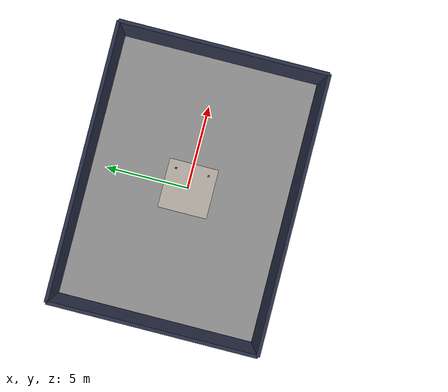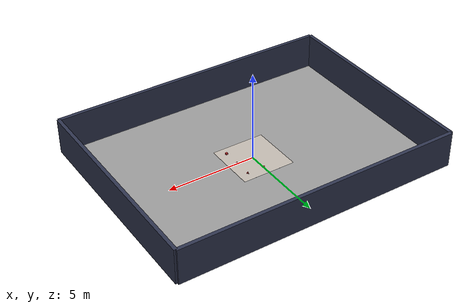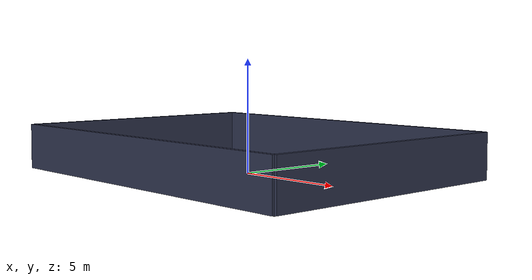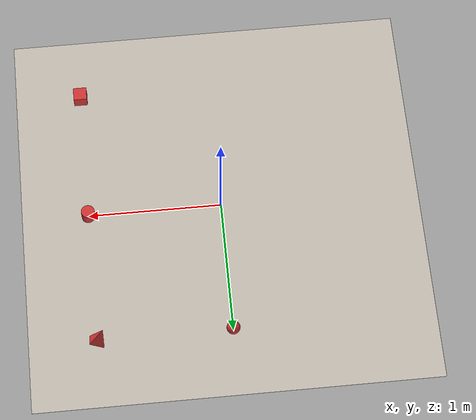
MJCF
<mujoco model="factory">
    <option timestep="0.001" gravity="0 0 -9.81"
            integrator="RK4" solver="PGS" />

    <visual>
        <headlight diffuse="0.6 0.6 0.6" ambient="0.3 0.3 0.3" />
        <rgba fog="0.10 0.12 0.14 1" />
        <global azimuth="120" elevation="-20" />
    </visual>

    <asset>
        <texture type="skybox" builtin="gradient"
                 rgb1="0.05 0.08 0.12" rgb2="0.25 0.27 0.30"
                 width="512" height="3072" />

        <material name="floor_mat" rgba="0.6 0.6 0.6 1" reflectance="0.3" />

        <texture name="kmu_logo_tex" type="2d" file="Signature_KMU.png" />
        <material name="logo_mat" texture="kmu_logo_tex" texuniform="true" />

        <material name="box_mat" rgba="0.8 0.2 0.2 1" reflectance="0.5" />

        <mesh name="tetra_mesh"
              vertex="0.05 0.05 0.05
                      -0.05 -0.05 0.05
                      -0.05 0.05 -0.05
                      0.05 -0.05 -0.05"/>
    </asset>

    <worldbody>
        <light pos="0 0 8" dir="0 0 -1" directional="true" />

        <geom name="floor_base" type="plane" size="8 6 0.05" pos="0 0 0" material="floor_mat" />

        <geom name="floor_logo"
              type="box"
              pos="0 0 0.001"
              size="1.5 1.5 0.0005"
              material="logo_mat" />

        <geom name="wall_front" type="box" pos="0 6 1" size="8 0.1 1" rgba="0.18 0.20 0.3 1" />
        <geom name="wall_back" type="box" pos="0 -6 1" size="8 0.1 1" rgba="0.18 0.20 0.3 1" />
        <geom name="wall_left" type="box" pos="-8 0 1" size="0.1 6 1" rgba="0.18 0.20 0.3 1" />
        <geom name="wall_right" type="box" pos="8 0 1" size="0.1 6 1" rgba="0.18 0.20 0.3 1" />

        <body name="movable_box" pos="1 -1 0.05">
            <freejoint />

            <geom name="box_geom"
                  type="box"
                  size="0.05 0.05 0.05"
                  material="box_mat"
                  mass="0.5"
                  friction="0.5 0.005 0.0001" />
                  </body>

        <body name="movable_sphere" pos="0 1 0.05">
            <freejoint />

            <geom name="sphere_geom"
                  type="sphere"
                  size="0.05 0.05"
                  material="box_mat"
                  mass="0.5"
                  friction="1.0 0.05 0.01" />
        </body>

        <body name="movable_tetra" pos="1 1 0.05">
            <freejoint/>
            <geom name="tetra_geom"
                  type="mesh"
                  mesh="tetra_mesh"
                  material="box_mat"
                  mass="0.005"
                  friction="0.5 0.005 0.0001"/>
        </body>

        <body name="movable_cylinder" pos="1 0 0.05">
            <freejoint />
            <geom name="cyl_geom"
            type="cylinder"
            size="0.05 0.05"
            material="box_mat"
            mass="0.5"/>
        </body>
    </worldbody>
</mujoco>
